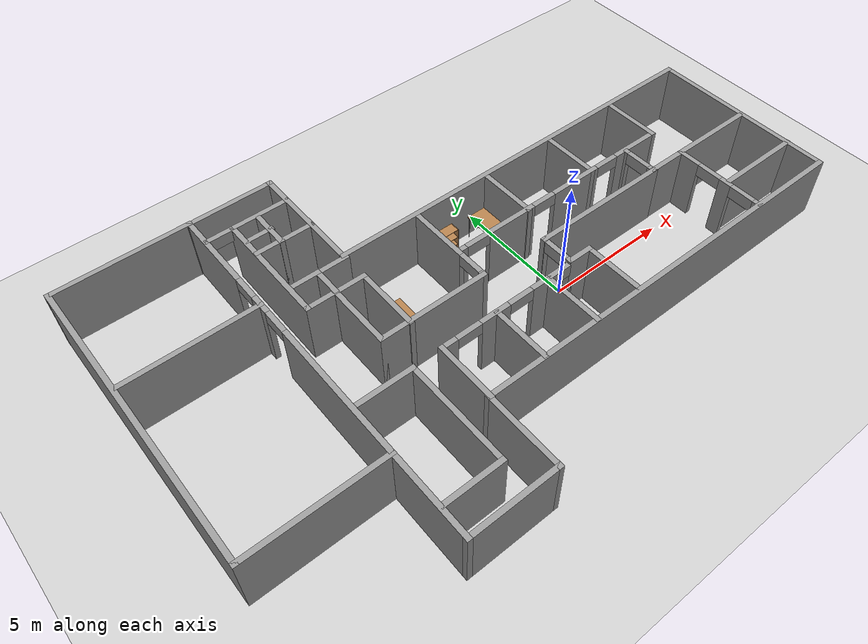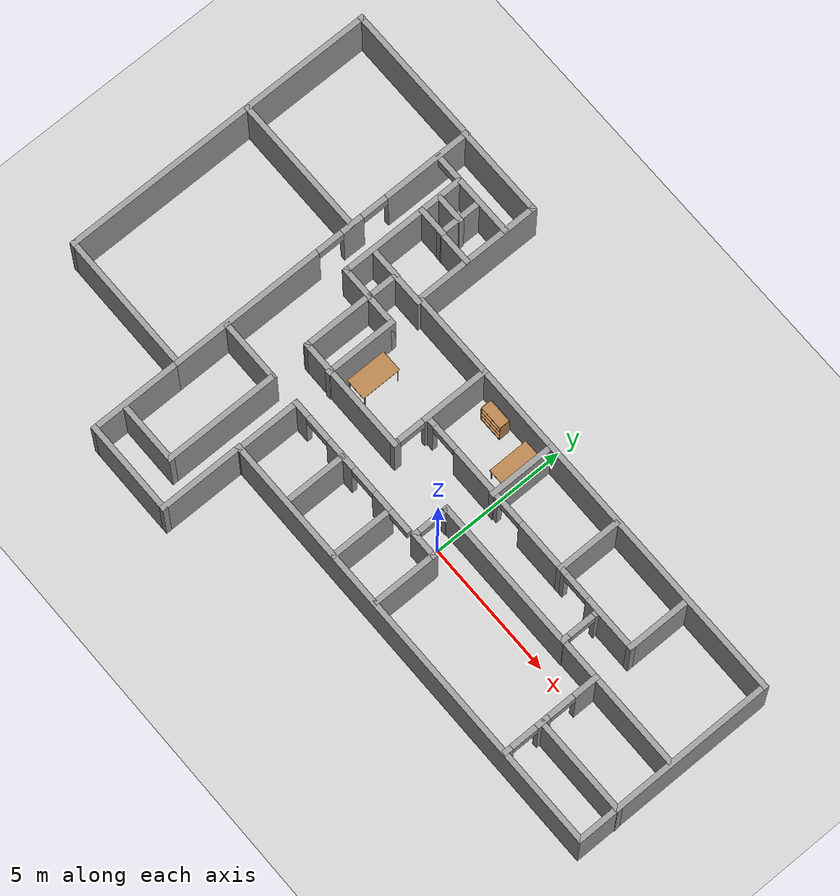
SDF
<sdf version="1.5">
 <world name="default">
  <model name="ground_plane">
   <static>1</static>
   <link name="link">
    <collision name="collision">
     <geometry><plane><normal>0 0 1</normal><size>100 100</size></plane></geometry>
     <surface><friction><ode><mu>100</mu><mu2>50</mu2></ode></friction></surface>
    </collision>
    <visual name="visual">
     <cast_shadows>0</cast_shadows>
     <geometry><plane><normal>0 0 1</normal><size>100 100</size></plane></geometry>
     <material>
      <script><uri>file://media/materials/scripts/gazebo.material</uri><name>Gazebo/Grey</name></script>
     </material>
    </visual>
   </link>
  </model>
  <model name="CP">
   <link name="Wall_101">
    <collision name="Wall_101_Collision">
     <geometry><box><size>1.30625 0.2 2.5</size></box></geometry>
     <pose>0 0 1.25 0 -0 0</pose>
    </collision>
    <visual name="Wall_101_Visual">
     <pose>0 0 1.25 0 -0 0</pose>
     <geometry><box><size>1.30625 0.2 2.5</size></box></geometry>
     <material>
      <script><uri>file://media/materials/scripts/gazebo.material</uri><name>Gazebo/Grey</name></script>
     </material>
    </visual>
    <pose>-6.6741 3.2611 0 0 -0 0</pose>
   </link>
   <link name="Wall_102">
    <collision name="Wall_102_Collision">
     <geometry><box><size>2.73431 0.2 2.5</size></box></geometry>
     <pose>0 0 1.25 0 -0 0</pose>
    </collision>
    <visual name="Wall_102_Visual">
     <pose>0 0 1.25 0 -0 0</pose>
     <geometry><box><size>2.73431 0.2 2.5</size></box></geometry>
     <material>
      <script><uri>file://media/materials/scripts/gazebo.material</uri><name>Gazebo/Grey</name></script>
     </material>
    </visual>
    <pose>-6.12098 1.99395 0 0 0 -1.5708</pose>
   </link>
   <link name="Wall_104">
    <collision name="Wall_104_Collision">
     <geometry><box><size>1.26602 0.2 2.5</size></box></geometry>
     <pose>0 0 1.25 0 -0 0</pose>
    </collision>
    <visual name="Wall_104_Visual">
     <pose>0 0 1.25 0 -0 0</pose>
     <geometry><box><size>1.26602 0.2 2.5</size></box></geometry>
     <material>
      <script><uri>file://media/materials/scripts/gazebo.material</uri><name>Gazebo/Grey</name></script>
     </material>
    </visual>
    <pose>-7.76023 4.36735 0 0 -0 0</pose>
   </link>
   <link name="Wall_105">
    <collision name="Wall_105_Collision">
     <geometry><box><size>1.24591 0.2 2.5</size></box></geometry>
     <pose>0 0 1.25 0 -0 0</pose>
    </collision>
    <visual name="Wall_105_Visual">
     <pose>0 0 1.25 0 -0 0</pose>
     <geometry><box><size>1.24591 0.2 2.5</size></box></geometry>
     <material>
      <script><uri>file://media/materials/scripts/gazebo.material</uri><name>Gazebo/Grey</name></script>
     </material>
    </visual>
    <pose>-7.22722 3.8444 0 0 0 -1.5708</pose>
   </link>
   <link name="Wall_107">
    <collision name="Wall_107_Collision">
     <geometry><box><size>1.70852 0.2 2.5</size></box></geometry>
     <pose>0 0 1.25 0 -0 0</pose>
    </collision>
    <visual name="Wall_107_Visual">
     <pose>0 0 1.25 0 -0 0</pose>
     <geometry><box><size>1.70852 0.2 2.5</size></box></geometry>
     <material>
      <script><uri>file://media/materials/scripts/gazebo.material</uri><name>Gazebo/Grey</name></script>
     </material>
    </visual>
    <pose>-7.38813 7.13297 0 0 0 -1.5708</pose>
   </link>
   <link name="Wall_108">
    <collision name="Wall_108_Collision">
     <geometry><box><size>1.42693 0.2 2.5</size></box></geometry>
     <pose>0 0 1.25 0 -0 0</pose>
    </collision>
    <visual name="Wall_108_Visual">
     <pose>0 0 1.25 0 -0 0</pose>
     <geometry><box><size>1.42693 0.2 2.5</size></box></geometry>
     <material>
      <script><uri>file://media/materials/scripts/gazebo.material</uri><name>Gazebo/Grey</name></script>
     </material>
    </visual>
    <pose>-6.77467 6.37871 0 0 -0 0</pose>
   </link>
   <link name="Wall_110">
    <collision name="Wall_110_Collision">
     <geometry><box><size>1.14534 0.2 2.5</size></box></geometry>
     <pose>0 0 1.25 0 -0 0</pose>
    </collision>
    <visual name="Wall_110_Visual">
     <pose>0 0 1.25 0 -0 0</pose>
     <geometry><box><size>1.14534 0.2 2.5</size></box></geometry>
     <material>
      <script><uri>file://media/materials/scripts/gazebo.material</uri><name>Gazebo/Grey</name></script>
     </material>
    </visual>
    <pose>-7.82057 7.10279 0 0 -0 0</pose>
   </link>
   <link name="Wall_112">
    <collision name="Wall_112_Collision">
     <geometry><box><size>1.16545 0.2 2.5</size></box></geometry>
     <pose>0 0 1.25 0 -0 0</pose>
    </collision>
    <visual name="Wall_112_Visual">
     <pose>0 0 1.25 0 -0 0</pose>
     <geometry><box><size>1.16545 0.2 2.5</size></box></geometry>
     <material>
      <script><uri>file://media/materials/scripts/gazebo.material</uri><name>Gazebo/Grey</name></script>
     </material>
    </visual>
    <pose>-7.85074 6.39882 0 0 -0 3.14159</pose>
   </link>
   <link name="Wall_114">
    <collision name="Wall_114_Collision">
     <geometry><box><size>1.30625 0.2 2.5</size></box></geometry>
     <pose>0 0 1.25 0 -0 0</pose>
    </collision>
    <visual name="Wall_114_Visual">
     <pose>0 0 1.25 0 -0 0</pose>
     <geometry><box><size>1.30625 0.2 2.5</size></box></geometry>
     <material>
      <script><uri>file://media/materials/scripts/gazebo.material</uri><name>Gazebo/Grey</name></script>
     </material>
    </visual>
    <pose>-6.65399 4.34724 0 0 -0 0</pose>
   </link>
   <link name="Wall_47">
    <collision name="Wall_47_Collision">
     <geometry><box><size>12.0469 0.2 2.5</size></box></geometry>
     <pose>0 0 1.25 0 -0 0</pose>
    </collision>
    <visual name="Wall_47_Visual">
     <pose>0 0 1.25 0 -0 0</pose>
     <geometry><box><size>12.0469 0.2 2.5</size></box></geometry>
     <material>
      <script><uri>file://media/materials/scripts/gazebo.material</uri><name>Gazebo/Grey</name></script>
     </material>
    </visual>
    <pose>-14.5888 3.21082 0 0 0 -1.5708</pose>
   </link>
   <link name="Wall_48">
    <collision name="Wall_48_Collision">
     <geometry><box><size>5.36919 0.2 2.5</size></box></geometry>
     <pose>0 0 1.25 0 -0 0</pose>
    </collision>
    <visual name="Wall_48_Visual">
     <pose>0 0 1.25 0 -0 0</pose>
     <geometry><box><size>5.36919 0.2 2.5</size></box></geometry>
     <material>
      <script><uri>file://media/materials/scripts/gazebo.material</uri><name>Gazebo/Grey</name></script>
     </material>
    </visual>
    <pose>-12.0042 -2.71263 0 0 -0 0</pose>
   </link>
   <link name="Wall_49">
    <pose>-9.4196 3.21082 0 0 -0 1.5708</pose>
    <visual name="Wall_49_Visual_0">
     <pose>-3.12596 0 1.25 0 -0 0</pose>
     <geometry><box><size>5.79498 0.2 2.5</size></box></geometry>
     <material>
      <script><uri>file://media/materials/scripts/gazebo.material</uri><name>Gazebo/Grey</name></script>
     </material>
    </visual>
    <collision name="Wall_49_Collision_0">
     <geometry><box><size>5.79498 0.2 2.5</size></box></geometry>
     <pose>-3.12596 0 1.25 0 -0 0</pose>
    </collision>
    <visual name="Wall_49_Visual_1">
     <pose>1.1867 0 1.25 0 -0 0</pose>
     <geometry><box><size>0.830335 0.2 2.5</size></box></geometry>
     <material>
      <script><uri>file://media/materials/scripts/gazebo.material</uri><name>Gazebo/Grey</name></script>
     </material>
    </visual>
    <collision name="Wall_49_Collision_1">
     <geometry><box><size>0.830335 0.2 2.5</size></box></geometry>
     <pose>1.1867 0 1.25 0 -0 0</pose>
    </collision>
    <visual name="Wall_49_Visual_2">
     <pose>4.31266 0 1.25 0 -0 0</pose>
     <geometry><box><size>3.42158 0.2 2.5</size></box></geometry>
     <material>
      <script><uri>file://media/materials/scripts/gazebo.material</uri><name>Gazebo/Grey</name></script>
     </material>
    </visual>
    <collision name="Wall_49_Collision_2">
     <geometry><box><size>3.42158 0.2 2.5</size></box></geometry>
     <pose>4.31266 0 1.25 0 -0 0</pose>
    </collision>
    <visual name="Wall_49_Visual_3">
     <pose>0.271533 0 2.25 0 -0 0</pose>
     <geometry><box><size>1 0.2 0.5</size></box></geometry>
     <material>
      <script><uri>file://media/materials/scripts/gazebo.material</uri><name>Gazebo/Grey</name></script>
     </material>
    </visual>
    <collision name="Wall_49_Collision_3">
     <geometry><box><size>1 0.2 0.5</size></box></geometry>
     <pose>0.271533 0 2.25 0 -0 0</pose>
    </collision>
    <visual name="Wall_49_Visual_4">
     <pose>2.10187 0 2.25 0 -0 0</pose>
     <geometry><box><size>1 0.2 0.5</size></box></geometry>
     <material>
      <script><uri>file://media/materials/scripts/gazebo.material</uri><name>Gazebo/Grey</name></script>
     </material>
    </visual>
    <collision name="Wall_49_Collision_4">
     <geometry><box><size>1 0.2 0.5</size></box></geometry>
     <pose>2.10187 0 2.25 0 -0 0</pose>
    </collision>
   </link>
   <link name="Wall_50">
    <collision name="Wall_50_Collision">
     <geometry><box><size>5.36919 0.2 2.5</size></box></geometry>
     <pose>0 0 1.25 0 -0 0</pose>
    </collision>
    <visual name="Wall_50_Visual">
     <pose>0 0 1.25 0 -0 0</pose>
     <geometry><box><size>5.36919 0.2 2.5</size></box></geometry>
     <material>
      <script><uri>file://media/materials/scripts/gazebo.material</uri><name>Gazebo/Grey</name></script>
     </material>
    </visual>
    <pose>-12.0042 9.13426 0 0 -0 3.14159</pose>
   </link>
   <link name="Wall_52">
    <collision name="Wall_52_Collision">
     <geometry><box><size>5.32896 0.2 2.5</size></box></geometry>
     <pose>0 0 1.25 0 -0 0</pose>
    </collision>
    <visual name="Wall_52_Visual">
     <pose>0 0 1.25 0 -0 0</pose>
     <geometry><box><size>5.32896 0.2 2.5</size></box></geometry>
     <material>
      <script><uri>file://media/materials/scripts/gazebo.material</uri><name>Gazebo/Grey</name></script>
     </material>
    </visual>
    <pose>-11.9841 4.38746 0 0 -0 0</pose>
   </link>
   <link name="Wall_54">
    <collision name="Wall_54_Collision">
     <geometry><box><size>3.49863 0.2 2.5</size></box></geometry>
     <pose>0 0 1.25 0 -0 0</pose>
    </collision>
    <visual name="Wall_54_Visual">
     <pose>0 0 1.25 0 -0 0</pose>
     <geometry><box><size>3.49863 0.2 2.5</size></box></geometry>
     <material>
      <script><uri>file://media/materials/scripts/gazebo.material</uri><name>Gazebo/Grey</name></script>
     </material>
    </visual>
    <pose>-7.7904 9.11415 0 0 -0 0</pose>
   </link>
   <link name="Wall_55">
    <collision name="Wall_55_Collision">
     <geometry><box><size>4.86635 0.2 2.5</size></box></geometry>
     <pose>0 0 1.25 0 -0 0</pose>
    </collision>
    <visual name="Wall_55_Visual">
     <pose>0 0 1.25 0 -0 0</pose>
     <geometry><box><size>4.86635 0.2 2.5</size></box></geometry>
     <material>
      <script><uri>file://media/materials/scripts/gazebo.material</uri><name>Gazebo/Grey</name></script>
     </material>
    </visual>
    <pose>-6.14109 6.78098 0 0 0 -1.5708</pose>
   </link>
   <link name="Wall_56">
    <collision name="Wall_56_Collision">
     <geometry><box><size>16.6127 0.2 2.5</size></box></geometry>
     <pose>0 0 1.25 0 -0 0</pose>
    </collision>
    <visual name="Wall_56_Visual">
     <pose>0 0 1.25 0 -0 0</pose>
     <geometry><box><size>16.6127 0.2 2.5</size></box></geometry>
     <material>
      <script><uri>file://media/materials/scripts/gazebo.material</uri><name>Gazebo/Grey</name></script>
     </material>
    </visual>
    <pose>2.06525 4.4478 0 0 -0 0</pose>
   </link>
   <link name="Wall_57">
    <collision name="Wall_57_Collision">
     <geometry><box><size>7.66214 0.2 2.5</size></box></geometry>
     <pose>0 0 1.25 0 -0 0</pose>
    </collision>
    <visual name="Wall_57_Visual">
     <pose>0 0 1.25 0 -0 0</pose>
     <geometry><box><size>7.66214 0.2 2.5</size></box></geometry>
     <material>
      <script><uri>file://media/materials/scripts/gazebo.material</uri><name>Gazebo/Grey</name></script>
     </material>
    </visual>
    <pose>10.2716 0.716735 0 0 0 -1.5708</pose>
   </link>
   <link name="Wall_58">
    <collision name="Wall_58_Collision">
     <geometry><box><size>16.5121 0.2 2.5</size></box></geometry>
     <pose>0 0 1.25 0 -0 0</pose>
    </collision>
    <visual name="Wall_58_Visual">
     <pose>0 0 1.25 0 -0 0</pose>
     <geometry><box><size>16.5121 0.2 2.5</size></box></geometry>
     <material>
      <script><uri>file://media/materials/scripts/gazebo.material</uri><name>Gazebo/Grey</name></script>
     </material>
    </visual>
    <pose>2.11553 -3.01433 0 0 -0 3.14159</pose>
   </link>
   <link name="Wall_59">
    <collision name="Wall_59_Collision">
     <geometry><box><size>3.23715 0.2 2.5</size></box></geometry>
     <pose>0 0 1.25 0 -0 0</pose>
    </collision>
    <visual name="Wall_59_Visual">
     <pose>0 0 1.25 0 -0 0</pose>
     <geometry><box><size>3.23715 0.2 2.5</size></box></geometry>
     <material>
      <script><uri>file://media/materials/scripts/gazebo.material</uri><name>Gazebo/Grey</name></script>
     </material>
    </visual>
    <pose>-6.04052 -4.53291 0 0 0 -1.5708</pose>
   </link>
   <link name="Wall_60">
    <collision name="Wall_60_Collision">
     <geometry><box><size>3.57908 0.2 2.5</size></box></geometry>
     <pose>0 0 1.25 0 -0 0</pose>
    </collision>
    <visual name="Wall_60_Visual">
     <pose>0 0 1.25 0 -0 0</pose>
     <geometry><box><size>3.57908 0.2 2.5</size></box></geometry>
     <material>
      <script><uri>file://media/materials/scripts/gazebo.material</uri><name>Gazebo/Grey</name></script>
     </material>
    </visual>
    <pose>-7.73006 -6.05148 0 0 -0 3.14159</pose>
   </link>
   <link name="Wall_61">
    <collision name="Wall_61_Collision">
     <geometry><box><size>3.35783 0.2 2.5</size></box></geometry>
     <pose>0 0 1.25 0 -0 0</pose>
    </collision>
    <visual name="Wall_61_Visual">
     <pose>0 0 1.25 0 -0 0</pose>
     <geometry><box><size>3.35783 0.2 2.5</size></box></geometry>
     <material>
      <script><uri>file://media/materials/scripts/gazebo.material</uri><name>Gazebo/Grey</name></script>
     </material>
    </visual>
    <pose>-9.4196 -4.47257 0 0 -0 1.5708</pose>
   </link>
   <link name="Wall_63">
    <pose>-7.77029 7.96768 0 0 -0 0</pose>
    <visual name="Wall_63_Visual_0">
     <pose>-1.63755 0 1.25 0 -0 0</pose>
     <geometry><box><size>0.102839 0.2 2.5</size></box></geometry>
     <material>
      <script><uri>file://media/materials/scripts/gazebo.material</uri><name>Gazebo/Grey</name></script>
     </material>
    </visual>
    <collision name="Wall_63_Collision_0">
     <geometry><box><size>0.102839 0.2 2.5</size></box></geometry>
     <pose>-1.63755 0 1.25 0 -0 0</pose>
    </collision>
    <visual name="Wall_63_Visual_1">
     <pose>0.55142 0 1.25 0 -0 0</pose>
     <geometry><box><size>2.2751 0.2 2.5</size></box></geometry>
     <material>
      <script><uri>file://media/materials/scripts/gazebo.material</uri><name>Gazebo/Grey</name></script>
     </material>
    </visual>
    <collision name="Wall_63_Collision_1">
     <geometry><box><size>2.2751 0.2 2.5</size></box></geometry>
     <pose>0.55142 0 1.25 0 -0 0</pose>
    </collision>
    <visual name="Wall_63_Visual_2">
     <pose>-1.08613 0 2.25 0 -0 0</pose>
     <geometry><box><size>1 0.2 0.5</size></box></geometry>
     <material>
      <script><uri>file://media/materials/scripts/gazebo.material</uri><name>Gazebo/Grey</name></script>
     </material>
    </visual>
    <collision name="Wall_63_Collision_2">
     <geometry><box><size>1 0.2 0.5</size></box></geometry>
     <pose>-1.08613 0 2.25 0 -0 0</pose>
    </collision>
   </link>
   <link name="Wall_65">
    <collision name="Wall_65_Collision">
     <geometry><box><size>4.82612 0.2 2.5</size></box></geometry>
     <pose>0 0 1.25 0 -0 0</pose>
    </collision>
    <visual name="Wall_65_Visual">
     <pose>0 0 1.25 0 -0 0</pose>
     <geometry><box><size>4.82612 0.2 2.5</size></box></geometry>
     <material>
      <script><uri>file://media/materials/scripts/gazebo.material</uri><name>Gazebo/Grey</name></script>
     </material>
    </visual>
    <pose>-8.35358 5.59428 0 0 0 -1.5708</pose>
   </link>
   <link name="Wall_66">
    <collision name="Wall_66_Collision">
     <geometry><box><size>1.30625 0.2 2.5</size></box></geometry>
     <pose>0 0 1.25 0 -0 0</pose>
    </collision>
    <visual name="Wall_66_Visual">
     <pose>0 0 1.25 0 -0 0</pose>
     <geometry><box><size>1.30625 0.2 2.5</size></box></geometry>
     <material>
      <script><uri>file://media/materials/scripts/gazebo.material</uri><name>Gazebo/Grey</name></script>
     </material>
    </visual>
    <pose>-7.80046 3.28121 0 0 -0 0</pose>
   </link>
   <link name="Wall_67">
    <collision name="Wall_67_Collision">
     <geometry><box><size>2.7142 0.2 2.5</size></box></geometry>
     <pose>0 0 1.25 0 -0 0</pose>
    </collision>
    <visual name="Wall_67_Visual">
     <pose>0 0 1.25 0 -0 0</pose>
     <geometry><box><size>2.7142 0.2 2.5</size></box></geometry>
     <material>
      <script><uri>file://media/materials/scripts/gazebo.material</uri><name>Gazebo/Grey</name></script>
     </material>
    </visual>
    <pose>-7.24734 2.02412 0 0 0 -1.5708</pose>
   </link>
   <link name="Wall_68">
    <collision name="Wall_68_Collision">
     <geometry><box><size>4.44396 0.2 2.5</size></box></geometry>
     <pose>0 0 1.25 0 -0 0</pose>
    </collision>
    <visual name="Wall_68_Visual">
     <pose>0 0 1.25 0 -0 0</pose>
     <geometry><box><size>4.44396 0.2 2.5</size></box></geometry>
     <material>
      <script><uri>file://media/materials/scripts/gazebo.material</uri><name>Gazebo/Grey</name></script>
     </material>
    </visual>
    <pose>-5.12535 0.767019 0 0 -0 0</pose>
   </link>
   <link name="Wall_69">
    <pose>-3.00337 2.60741 0 0 -0 1.5708</pose>
    <visual name="Wall_69_Visual_0">
     <pose>-1.80852 0 1.25 0 -0 0</pose>
     <geometry><box><size>0.263748 0.2 2.5</size></box></geometry>
     <material>
      <script><uri>file://media/materials/scripts/gazebo.material</uri><name>Gazebo/Grey</name></script>
     </material>
    </visual>
    <collision name="Wall_69_Collision_0">
     <geometry><box><size>0.263748 0.2 2.5</size></box></geometry>
     <pose>-1.80852 0 1.25 0 -0 0</pose>
    </collision>
    <visual name="Wall_69_Visual_1">
     <pose>0.631874 0 1.25 0 -0 0</pose>
     <geometry><box><size>2.61704 0.2 2.5</size></box></geometry>
     <material>
      <script><uri>file://media/materials/scripts/gazebo.material</uri><name>Gazebo/Grey</name></script>
     </material>
    </visual>
    <collision name="Wall_69_Collision_1">
     <geometry><box><size>2.61704 0.2 2.5</size></box></geometry>
     <pose>0.631874 0 1.25 0 -0 0</pose>
    </collision>
    <visual name="Wall_69_Visual_2">
     <pose>-1.17664 0 2.25 0 -0 0</pose>
     <geometry><box><size>1 0.2 0.5</size></box></geometry>
     <material>
      <script><uri>file://media/materials/scripts/gazebo.material</uri><name>Gazebo/Grey</name></script>
     </material>
    </visual>
    <collision name="Wall_69_Collision_2">
     <geometry><box><size>1 0.2 0.5</size></box></geometry>
     <pose>-1.17664 0 2.25 0 -0 0</pose>
    </collision>
   </link>
   <link name="Wall_71">
    <pose>1.87417 2.11463 0 0 -0 0</pose>
    <visual name="Wall_71_Visual_0">
     <pose>-4.71493 0 1.25 0 -0 0</pose>
     <geometry><box><size>0.404543 0.2 2.5</size></box></geometry>
     <material>
      <script><uri>file://media/materials/scripts/gazebo.material</uri><name>Gazebo/Grey</name></script>
     </material>
    </visual>
    <collision name="Wall_71_Collision_0">
     <geometry><box><size>0.404543 0.2 2.5</size></box></geometry>
     <pose>-4.71493 0 1.25 0 -0 0</pose>
    </collision>
    <visual name="Wall_71_Visual_1">
     <pose>-2.45386 0 1.25 0 -0 0</pose>
     <geometry><box><size>2.1176 0.2 2.5</size></box></geometry>
     <material>
      <script><uri>file://media/materials/scripts/gazebo.material</uri><name>Gazebo/Grey</name></script>
     </material>
    </visual>
    <collision name="Wall_71_Collision_1">
     <geometry><box><size>2.1176 0.2 2.5</size></box></geometry>
     <pose>-2.45386 0 1.25 0 -0 0</pose>
    </collision>
    <visual name="Wall_71_Visual_2">
     <pose>0.693918 0 1.25 0 -0 0</pose>
     <geometry><box><size>2.17794 0.2 2.5</size></box></geometry>
     <material>
      <script><uri>file://media/materials/scripts/gazebo.material</uri><name>Gazebo/Grey</name></script>
     </material>
    </visual>
    <collision name="Wall_71_Collision_2">
     <geometry><box><size>2.17794 0.2 2.5</size></box></geometry>
     <pose>0.693918 0 1.25 0 -0 0</pose>
    </collision>
    <visual name="Wall_71_Visual_3">
     <pose>3.85005 0 1.25 0 -0 0</pose>
     <geometry><box><size>2.13431 0.2 2.5</size></box></geometry>
     <material>
      <script><uri>file://media/materials/scripts/gazebo.material</uri><name>Gazebo/Grey</name></script>
     </material>
    </visual>
    <collision name="Wall_71_Collision_3">
     <geometry><box><size>2.13431 0.2 2.5</size></box></geometry>
     <pose>3.85005 0 1.25 0 -0 0</pose>
    </collision>
    <visual name="Wall_71_Visual_4">
     <pose>-4.01266 0 2.25 0 -0 0</pose>
     <geometry><box><size>1 0.2 0.5</size></box></geometry>
     <material>
      <script><uri>file://media/materials/scripts/gazebo.material</uri><name>Gazebo/Grey</name></script>
     </material>
    </visual>
    <collision name="Wall_71_Collision_4">
     <geometry><box><size>1 0.2 0.5</size></box></geometry>
     <pose>-4.01266 0 2.25 0 -0 0</pose>
    </collision>
    <visual name="Wall_71_Visual_5">
     <pose>-0.895054 0 2.25 0 -0 0</pose>
     <geometry><box><size>1 0.2 0.5</size></box></geometry>
     <material>
      <script><uri>file://media/materials/scripts/gazebo.material</uri><name>Gazebo/Grey</name></script>
     </material>
    </visual>
    <collision name="Wall_71_Collision_5">
     <geometry><box><size>1 0.2 0.5</size></box></geometry>
     <pose>-0.895054 0 2.25 0 -0 0</pose>
    </collision>
    <visual name="Wall_71_Visual_6">
     <pose>2.28289 0 2.25 0 -0 0</pose>
     <geometry><box><size>1 0.2 0.5</size></box></geometry>
     <material>
      <script><uri>file://media/materials/scripts/gazebo.material</uri><name>Gazebo/Grey</name></script>
     </material>
    </visual>
    <collision name="Wall_71_Collision_6">
     <geometry><box><size>1 0.2 0.5</size></box></geometry>
     <pose>2.28289 0 2.25 0 -0 0</pose>
    </collision>
   </link>
   <link name="Wall_72">
    <collision name="Wall_72_Collision">
     <geometry><box><size>2.37227 0.2 2.5</size></box></geometry>
     <pose>0 0 1.25 0 -0 0</pose>
    </collision>
    <visual name="Wall_72_Visual">
     <pose>0 0 1.25 0 -0 0</pose>
     <geometry><box><size>2.37227 0.2 2.5</size></box></geometry>
     <material>
      <script><uri>file://media/materials/scripts/gazebo.material</uri><name>Gazebo/Grey</name></script>
     </material>
    </visual>
    <pose>6.69137 3.20076 0 0 -0 1.5708</pose>
   </link>
   <link name="Wall_74">
    <collision name="Wall_74_Collision">
     <geometry><box><size>2.45272 0.2 2.5</size></box></geometry>
     <pose>0 0 1.25 0 -0 0</pose>
    </collision>
    <visual name="Wall_74_Visual">
     <pose>0 0 1.25 0 -0 0</pose>
     <geometry><box><size>2.45272 0.2 2.5</size></box></geometry>
     <material>
      <script><uri>file://media/materials/scripts/gazebo.material</uri><name>Gazebo/Grey</name></script>
     </material>
    </visual>
    <pose>0.214799 3.20076 0 0 -0 1.5708</pose>
   </link>
   <link name="Wall_76">
    <collision name="Wall_76_Collision">
     <geometry><box><size>2.43261 0.2 2.5</size></box></geometry>
     <pose>0 0 1.25 0 -0 0</pose>
    </collision>
    <visual name="Wall_76_Visual">
     <pose>0 0 1.25 0 -0 0</pose>
     <geometry><box><size>2.43261 0.2 2.5</size></box></geometry>
     <material>
      <script><uri>file://media/materials/scripts/gazebo.material</uri><name>Gazebo/Grey</name></script>
     </material>
    </visual>
    <pose>3.39274 3.23093 0 0 -0 1.5708</pose>
   </link>
   <link name="Wall_78">
    <pose>5.18285 1.34026 0 0 0 -1.5708</pose>
    <visual name="Wall_78_Visual_0">
     <pose>-0.662044 0 1.25 0 -0 0</pose>
     <geometry><box><size>0.223521 0.2 2.5</size></box></geometry>
     <material>
      <script><uri>file://media/materials/scripts/gazebo.material</uri><name>Gazebo/Grey</name></script>
     </material>
    </visual>
    <collision name="Wall_78_Collision_0">
     <geometry><box><size>0.223521 0.2 2.5</size></box></geometry>
     <pose>-0.662044 0 1.25 0 -0 0</pose>
    </collision>
    <visual name="Wall_78_Visual_1">
     <pose>0.61176 0 1.25 0 -0 0</pose>
     <geometry><box><size>0.324089 0.2 2.5</size></box></geometry>
     <material>
      <script><uri>file://media/materials/scripts/gazebo.material</uri><name>Gazebo/Grey</name></script>
     </material>
    </visual>
    <collision name="Wall_78_Collision_1">
     <geometry><box><size>0.324089 0.2 2.5</size></box></geometry>
     <pose>0.61176 0 1.25 0 -0 0</pose>
    </collision>
    <visual name="Wall_78_Visual_2">
     <pose>-0.050284 0 2.25 0 -0 0</pose>
     <geometry><box><size>1 0.2 0.5</size></box></geometry>
     <material>
      <script><uri>file://media/materials/scripts/gazebo.material</uri><name>Gazebo/Grey</name></script>
     </material>
    </visual>
    <collision name="Wall_78_Collision_2">
     <geometry><box><size>1 0.2 0.5</size></box></geometry>
     <pose>-0.050284 0 2.25 0 -0 0</pose>
    </collision>
   </link>
   <link name="Wall_79">
    <collision name="Wall_79_Collision">
     <geometry><box><size>5.18817 0.2 2.5</size></box></geometry>
     <pose>0 0 1.25 0 -0 0</pose>
    </collision>
    <visual name="Wall_79_Visual">
     <pose>0 0 1.25 0 -0 0</pose>
     <geometry><box><size>5.18817 0.2 2.5</size></box></geometry>
     <material>
      <script><uri>file://media/materials/scripts/gazebo.material</uri><name>Gazebo/Grey</name></script>
     </material>
    </visual>
    <pose>7.67693 0.666451 0 0 -0 0</pose>
   </link>
   <link name="Wall_81">
    <collision name="Wall_81_Collision">
     <geometry><box><size>5.75135 0.2 2.5</size></box></geometry>
     <pose>0 0 1.25 0 -0 0</pose>
    </collision>
    <visual name="Wall_81_Visual">
     <pose>0 0 1.25 0 -0 0</pose>
     <geometry><box><size>5.75135 0.2 2.5</size></box></geometry>
     <material>
      <script><uri>file://media/materials/scripts/gazebo.material</uri><name>Gazebo/Grey</name></script>
     </material>
    </visual>
    <pose>2.42729 0.646338 0 0 -0 3.14159</pose>
   </link>
   <link name="Wall_82">
    <pose>-0.348381 0.002703 0 0 0 -1.5708</pose>
    <visual name="Wall_82_Visual_0">
     <pose>-0.631874 0 1.25 0 -0 0</pose>
     <geometry><box><size>0.223521 0.2 2.5</size></box></geometry>
     <material>
      <script><uri>file://media/materials/scripts/gazebo.material</uri><name>Gazebo/Grey</name></script>
     </material>
    </visual>
    <collision name="Wall_82_Collision_0">
     <geometry><box><size>0.223521 0.2 2.5</size></box></geometry>
     <pose>-0.631874 0 1.25 0 -0 0</pose>
    </collision>
    <visual name="Wall_82_Visual_1">
     <pose>0.61176 0 1.25 0 -0 0</pose>
     <geometry><box><size>0.263748 0.2 2.5</size></box></geometry>
     <material>
      <script><uri>file://media/materials/scripts/gazebo.material</uri><name>Gazebo/Grey</name></script>
     </material>
    </visual>
    <collision name="Wall_82_Collision_1">
     <geometry><box><size>0.263748 0.2 2.5</size></box></geometry>
     <pose>0.61176 0 1.25 0 -0 0</pose>
    </collision>
    <visual name="Wall_82_Visual_2">
     <pose>-0.020114 0 2.25 0 -0 0</pose>
     <geometry><box><size>1 0.2 0.5</size></box></geometry>
     <material>
      <script><uri>file://media/materials/scripts/gazebo.material</uri><name>Gazebo/Grey</name></script>
     </material>
    </visual>
    <collision name="Wall_82_Collision_2">
     <geometry><box><size>1 0.2 0.5</size></box></geometry>
     <pose>-0.020114 0 2.25 0 -0 0</pose>
    </collision>
   </link>
   <link name="Wall_83">
    <collision name="Wall_83_Collision">
     <geometry><box><size>1.085 0.2 2.5</size></box></geometry>
     <pose>0 0 1.25 0 -0 0</pose>
    </collision>
    <visual name="Wall_83_Visual">
     <pose>0 0 1.25 0 -0 0</pose>
     <geometry><box><size>1.085 0.2 2.5</size></box></geometry>
     <material>
      <script><uri>file://media/materials/scripts/gazebo.material</uri><name>Gazebo/Grey</name></script>
     </material>
    </visual>
    <pose>0.094117 -0.640931 0 0 -0 0</pose>
   </link>
   <link name="Wall_84">
    <collision name="Wall_84_Collision">
     <geometry><box><size>2.47283 0.2 2.5</size></box></geometry>
     <pose>0 0 1.25 0 -0 0</pose>
    </collision>
    <visual name="Wall_84_Visual">
     <pose>0 0 1.25 0 -0 0</pose>
     <geometry><box><size>2.47283 0.2 2.5</size></box></geometry>
     <material>
      <script><uri>file://media/materials/scripts/gazebo.material</uri><name>Gazebo/Grey</name></script>
     </material>
    </visual>
    <pose>0.536616 -1.77735 0 0 0 -1.5708</pose>
   </link>
   <link name="Wall_86">
    <collision name="Wall_86_Collision">
     <geometry><box><size>2.51306 0.2 2.5</size></box></geometry>
     <pose>0 0 1.25 0 -0 0</pose>
    </collision>
    <visual name="Wall_86_Visual">
     <pose>0 0 1.25 0 -0 0</pose>
     <geometry><box><size>2.51306 0.2 2.5</size></box></geometry>
     <material>
      <script><uri>file://media/materials/scripts/gazebo.material</uri><name>Gazebo/Grey</name></script>
     </material>
    </visual>
    <pose>-6.0003 -1.87792 0 0 -0 1.5708</pose>
   </link>
   <link name="Wall_87">
    <pose>-3.30508 -0.721385 0 0 -0 0</pose>
    <visual name="Wall_87_Visual_0">
     <pose>-2.45215 0 1.25 0 -0 0</pose>
     <geometry><box><size>0.686133 0.2 2.5</size></box></geometry>
     <material>
      <script><uri>file://media/materials/scripts/gazebo.material</uri><name>Gazebo/Grey</name></script>
     </material>
    </visual>
    <collision name="Wall_87_Collision_0">
     <geometry><box><size>0.686133 0.2 2.5</size></box></geometry>
     <pose>-2.45215 0 1.25 0 -0 0</pose>
    </collision>
    <visual name="Wall_87_Visual_1">
     <pose>-0.502839 0 1.25 0 -0 0</pose>
     <geometry><box><size>1.21249 0.2 2.5</size></box></geometry>
     <material>
      <script><uri>file://media/materials/scripts/gazebo.material</uri><name>Gazebo/Grey</name></script>
     </material>
    </visual>
    <collision name="Wall_87_Collision_1">
     <geometry><box><size>1.21249 0.2 2.5</size></box></geometry>
     <pose>-0.502839 0 1.25 0 -0 0</pose>
    </collision>
    <visual name="Wall_87_Visual_2">
     <pose>1.4884 0 1.25 0 -0 0</pose>
     <geometry><box><size>0.769994 0.2 2.5</size></box></geometry>
     <material>
      <script><uri>file://media/materials/scripts/gazebo.material</uri><name>Gazebo/Grey</name></script>
     </material>
    </visual>
    <collision name="Wall_87_Collision_2">
     <geometry><box><size>0.769994 0.2 2.5</size></box></geometry>
     <pose>1.4884 0 1.25 0 -0 0</pose>
    </collision>
    <visual name="Wall_87_Visual_3">
     <pose>-1.60909 0 2.25 0 -0 0</pose>
     <geometry><box><size>1 0.2 0.5</size></box></geometry>
     <material>
      <script><uri>file://media/materials/scripts/gazebo.material</uri><name>Gazebo/Grey</name></script>
     </material>
    </visual>
    <collision name="Wall_87_Collision_3">
     <geometry><box><size>1 0.2 0.5</size></box></geometry>
     <pose>-1.60909 0 2.25 0 -0 0</pose>
    </collision>
    <visual name="Wall_87_Visual_4">
     <pose>0.603407 0 2.25 0 -0 0</pose>
     <geometry><box><size>1 0.2 0.5</size></box></geometry>
     <material>
      <script><uri>file://media/materials/scripts/gazebo.material</uri><name>Gazebo/Grey</name></script>
     </material>
    </visual>
    <collision name="Wall_87_Collision_4">
     <geometry><box><size>1 0.2 0.5</size></box></geometry>
     <pose>0.603407 0 2.25 0 -0 0</pose>
    </collision>
    <visual name="Wall_87_Visual_5">
     <pose>2.33431 0 2.25 0 -0 0</pose>
     <geometry><box><size>0.921817 0.2 0.5</size></box></geometry>
     <material>
      <script><uri>file://media/materials/scripts/gazebo.material</uri><name>Gazebo/Grey</name></script>
     </material>
    </visual>
    <collision name="Wall_87_Collision_5">
     <geometry><box><size>0.921817 0.2 0.5</size></box></geometry>
     <pose>2.33431 0 2.25 0 -0 0</pose>
    </collision>
   </link>
   <link name="Wall_89">
    <collision name="Wall_89_Collision">
     <geometry><box><size>2.39238 0.2 2.5</size></box></geometry>
     <pose>0 0 1.25 0 -0 0</pose>
    </collision>
    <visual name="Wall_89_Visual">
     <pose>0 0 1.25 0 -0 0</pose>
     <geometry><box><size>2.39238 0.2 2.5</size></box></geometry>
     <material>
      <script><uri>file://media/materials/scripts/gazebo.material</uri><name>Gazebo/Grey</name></script>
     </material>
    </visual>
    <pose>-1.45463 -1.89803 0 0 0 -1.5708</pose>
   </link>
   <link name="Wall_91">
    <collision name="Wall_91_Collision">
     <geometry><box><size>2.39238 0.2 2.5</size></box></geometry>
     <pose>0 0 1.25 0 -0 0</pose>
    </collision>
    <visual name="Wall_91_Visual">
     <pose>0 0 1.25 0 -0 0</pose>
     <geometry><box><size>2.39238 0.2 2.5</size></box></geometry>
     <material>
      <script><uri>file://media/materials/scripts/gazebo.material</uri><name>Gazebo/Grey</name></script>
     </material>
    </visual>
    <pose>-3.72746 -1.87792 0 0 0 -1.5708</pose>
   </link>
   <link name="Wall_93">
    <collision name="Wall_93_Collision">
     <geometry><box><size>2.39238 0.2 2.5</size></box></geometry>
     <pose>0 0 1.25 0 -0 0</pose>
    </collision>
    <visual name="Wall_93_Visual">
     <pose>0 0 1.25 0 -0 0</pose>
     <geometry><box><size>2.39238 0.2 2.5</size></box></geometry>
     <material>
      <script><uri>file://media/materials/scripts/gazebo.material</uri><name>Gazebo/Grey</name></script>
     </material>
    </visual>
    <pose>-8.24296 -0.741499 0 0 -0 0</pose>
   </link>
   <link name="Wall_94">
    <collision name="Wall_94_Collision">
     <geometry><box><size>4.3434 0.2 2.5</size></box></geometry>
     <pose>0 0 1.25 0 -0 0</pose>
    </collision>
    <visual name="Wall_94_Visual">
     <pose>0 0 1.25 0 -0 0</pose>
     <geometry><box><size>4.3434 0.2 2.5</size></box></geometry>
     <material>
      <script><uri>file://media/materials/scripts/gazebo.material</uri><name>Gazebo/Grey</name></script>
     </material>
    </visual>
    <pose>-7.14677 -2.8132 0 0 0 -1.5708</pose>
   </link>
   <link name="Wall_95">
    <collision name="Wall_95_Collision">
     <geometry><box><size>2.39238 0.2 2.5</size></box></geometry>
     <pose>0 0 1.25 0 -0 0</pose>
    </collision>
    <visual name="Wall_95_Visual">
     <pose>0 0 1.25 0 -0 0</pose>
     <geometry><box><size>2.39238 0.2 2.5</size></box></geometry>
     <material>
      <script><uri>file://media/materials/scripts/gazebo.material</uri><name>Gazebo/Grey</name></script>
     </material>
    </visual>
    <pose>-8.24296 -4.8849 0 0 -0 3.14159</pose>
   </link>
   <link name="Wall_97">
    <pose>6.7316 -1.15383 0 0 0 -1.5708</pose>
    <visual name="Wall_97_Visual_0">
     <pose>-1.4163 0 1.25 0 -0 0</pose>
     <geometry><box><size>1.00795 0.2 2.5</size></box></geometry>
     <material>
      <script><uri>file://media/materials/scripts/gazebo.material</uri><name>Gazebo/Grey</name></script>
     </material>
    </visual>
    <collision name="Wall_97_Collision_0">
     <geometry><box><size>1.00795 0.2 2.5</size></box></geometry>
     <pose>-1.4163 0 1.25 0 -0 0</pose>
    </collision>
    <visual name="Wall_97_Visual_1">
     <pose>0.341931 0 1.25 0 -0 0</pose>
     <geometry><box><size>0.508518 0.2 2.5</size></box></geometry>
     <material>
      <script><uri>file://media/materials/scripts/gazebo.material</uri><name>Gazebo/Grey</name></script>
     </material>
    </visual>
    <collision name="Wall_97_Collision_1">
     <geometry><box><size>0.508518 0.2 2.5</size></box></geometry>
     <pose>0.341931 0 1.25 0 -0 0</pose>
    </collision>
    <visual name="Wall_97_Visual_2">
     <pose>1.75823 0 1.25 0 -0 0</pose>
     <geometry><box><size>0.324089 0.2 2.5</size></box></geometry>
     <material>
      <script><uri>file://media/materials/scripts/gazebo.material</uri><name>Gazebo/Grey</name></script>
     </material>
    </visual>
    <collision name="Wall_97_Collision_2">
     <geometry><box><size>0.324089 0.2 2.5</size></box></geometry>
     <pose>1.75823 0 1.25 0 -0 0</pose>
    </collision>
    <visual name="Wall_97_Visual_3">
     <pose>-0.412328 0 2.25 0 -0 0</pose>
     <geometry><box><size>1 0.2 0.5</size></box></geometry>
     <material>
      <script><uri>file://media/materials/scripts/gazebo.material</uri><name>Gazebo/Grey</name></script>
     </material>
    </visual>
    <collision name="Wall_97_Collision_3">
     <geometry><box><size>1 0.2 0.5</size></box></geometry>
     <pose>-0.412328 0 2.25 0 -0 0</pose>
    </collision>
    <visual name="Wall_97_Visual_4">
     <pose>1.09619 0 2.25 0 -0 0</pose>
     <geometry><box><size>1 0.2 0.5</size></box></geometry>
     <material>
      <script><uri>file://media/materials/scripts/gazebo.material</uri><name>Gazebo/Grey</name></script>
     </material>
    </visual>
    <collision name="Wall_97_Collision_4">
     <geometry><box><size>1 0.2 0.5</size></box></geometry>
     <pose>1.09619 0 2.25 0 -0 0</pose>
    </collision>
   </link>
   <link name="Wall_99">
    <collision name="Wall_99_Collision">
     <geometry><box><size>3.71988 0.2 2.5</size></box></geometry>
     <pose>0 0 1.25 0 -0 0</pose>
    </collision>
    <visual name="Wall_99_Visual">
     <pose>0 0 1.25 0 -0 0</pose>
     <geometry><box><size>3.71988 0.2 2.5</size></box></geometry>
     <material>
      <script><uri>file://media/materials/scripts/gazebo.material</uri><name>Gazebo/Grey</name></script>
     </material>
    </visual>
    <pose>8.53176 -1.52593 0 0 -0 0</pose>
   </link>
   <static>1</static>
  </model>
  <model name="table_3_clone_clone_clone_0">
   <static>1</static>
   <link name="link">
    <collision name="surface">
     <pose>0 0 1 0 -0 0</pose>
     <geometry><box><size>1.5 0.8 0.03</size></box></geometry>
     <surface><friction><ode><mu>0.6</mu><mu2>0.6</mu2></ode></friction></surface>
    </collision>
    <visual name="visual1">
     <pose>0 0 1 0 -0 0</pose>
     <geometry><box><size>1.5 0.8 0.03</size></box></geometry>
     <material>
      <script><uri>file://media/materials/scripts/gazebo.material</uri><name>Gazebo/Wood</name></script>
     </material>
    </visual>
    <collision name="front_left_leg">
     <pose>0.68 0.38 0.5 0 -0 0</pose>
     <geometry><cylinder><radius>0.02</radius><length>1</length></cylinder></geometry>
    </collision>
    <visual name="front_left_leg">
     <pose>0.68 0.38 0.5 0 -0 0</pose>
     <geometry><cylinder><radius>0.02</radius><length>1</length></cylinder></geometry>
     <material>
      <script><uri>file://media/materials/scripts/gazebo.material</uri><name>Gazebo/Grey</name></script>
     </material>
    </visual>
    <collision name="front_right_leg">
     <pose>0.68 -0.38 0.5 0 -0 0</pose>
     <geometry><cylinder><radius>0.02</radius><length>1</length></cylinder></geometry>
    </collision>
    <visual name="front_right_leg">
     <pose>0.68 -0.38 0.5 0 -0 0</pose>
     <geometry><cylinder><radius>0.02</radius><length>1</length></cylinder></geometry>
     <material>
      <script><uri>file://media/materials/scripts/gazebo.material</uri><name>Gazebo/Grey</name></script>
     </material>
    </visual>
    <collision name="back_right_leg">
     <pose>-0.68 -0.38 0.5 0 -0 0</pose>
     <geometry><cylinder><radius>0.02</radius><length>1</length></cylinder></geometry>
    </collision>
    <visual name="back_right_leg">
     <pose>-0.68 -0.38 0.5 0 -0 0</pose>
     <geometry><cylinder><radius>0.02</radius><length>1</length></cylinder></geometry>
     <material>
      <script><uri>file://media/materials/scripts/gazebo.material</uri><name>Gazebo/Grey</name></script>
     </material>
    </visual>
    <collision name="back_left_leg">
     <pose>-0.68 0.38 0.5 0 -0 0</pose>
     <geometry><cylinder><radius>0.02</radius><length>1</length></cylinder></geometry>
    </collision>
    <visual name="back_left_leg">
     <pose>-0.68 0.38 0.5 0 -0 0</pose>
     <geometry><cylinder><radius>0.02</radius><length>1</length></cylinder></geometry>
     <material>
      <script><uri>file://media/materials/scripts/gazebo.material</uri><name>Gazebo/Grey</name></script>
     </material>
    </visual>
   </link>
   <pose>-5.51241 2 0 0 -0 1.57</pose>
  </model>
  <model name="bookshelf_3_clone_clone_0">
   <static>1</static>
   <link name="link">
    <inertial><mass>1</mass></inertial>
    <collision name="back">
     <pose>0 0.005 0.6 0 -0 0</pose>
     <geometry><box><size>0.9 0.01 1.2</size></box></geometry>
    </collision>
    <visual name="visual1">
     <pose>0 0.005 0.6 0 -0 0</pose>
     <geometry><box><size>0.9 0.01 1.2</size></box></geometry>
     <material>
      <script><uri>file://media/materials/scripts/gazebo.material</uri><name>Gazebo/Wood</name></script>
     </material>
    </visual>
    <collision name="left_side">
     <pose>0.45 -0.195 0.6 0 -0 0</pose>
     <geometry><box><size>0.02 0.4 1.2</size></box></geometry>
    </collision>
    <visual name="visual2">
     <pose>0.45 -0.195 0.6 0 -0 0</pose>
     <geometry><box><size>0.02 0.4 1.2</size></box></geometry>
     <material>
      <script><uri>file://media/materials/scripts/gazebo.material</uri><name>Gazebo/Wood</name></script>
     </material>
    </visual>
    <collision name="right_side">
     <pose>-0.45 -0.195 0.6 0 -0 0</pose>
     <geometry><box><size>0.02 0.4 1.2</size></box></geometry>
    </collision>
    <visual name="visual3">
     <pose>-0.45 -0.195 0.6 0 -0 0</pose>
     <geometry><box><size>0.02 0.4 1.2</size></box></geometry>
     <material>
      <script><uri>file://media/materials/scripts/gazebo.material</uri><name>Gazebo/Wood</name></script>
     </material>
    </visual>
    <collision name="bottom">
     <pose>0 -0.195 0.03 0 -0 0</pose>
     <geometry><box><size>0.88 0.4 0.06</size></box></geometry>
    </collision>
    <visual name="visual4">
     <pose>0 -0.195 0.03 0 -0 0</pose>
     <geometry><box><size>0.88 0.4 0.06</size></box></geometry>
     <material>
      <script><uri>file://media/materials/scripts/gazebo.material</uri><name>Gazebo/Wood</name></script>
     </material>
    </visual>
    <collision name="top">
     <pose>0 -0.195 1.19 0 -0 0</pose>
     <geometry><box><size>0.88 0.4 0.02</size></box></geometry>
    </collision>
    <visual name="visual5">
     <pose>0 -0.195 1.19 0 -0 0</pose>
     <geometry><box><size>0.88 0.4 0.02</size></box></geometry>
     <material>
      <script><uri>file://media/materials/scripts/gazebo.material</uri><name>Gazebo/Wood</name></script>
     </material>
    </visual>
    <collision name="low_shelf">
     <pose>0 -0.195 0.43 0 -0 0</pose>
     <geometry><box><size>0.88 0.4 0.02</size></box></geometry>
    </collision>
    <visual name="visual6">
     <pose>0 -0.195 0.43 0 -0 0</pose>
     <geometry><box><size>0.88 0.4 0.02</size></box></geometry>
     <material>
      <script><uri>file://media/materials/scripts/gazebo.material</uri><name>Gazebo/Wood</name></script>
     </material>
    </visual>
    <collision name="high_shelf">
     <pose>0 -0.195 0.8 0 -0 0</pose>
     <geometry><box><size>0.88 0.4 0.02</size></box></geometry>
    </collision>
    <visual name="visual7">
     <pose>0 -0.195 0.8 0 -0 0</pose>
     <geometry><box><size>0.88 0.4 0.02</size></box></geometry>
     <material>
      <script><uri>file://media/materials/scripts/gazebo.material</uri><name>Gazebo/Wood</name></script>
     </material>
    </visual>
   </link>
   <pose>-2 4.25761 -0 0 -0 0</pose>
  </model>
  <model name="table_3_clone_clone_clone_0_clone">
   <static>1</static>
   <link name="link">
    <collision name="surface">
     <pose>0 0 1 0 -0 0</pose>
     <geometry><box><size>1.5 0.8 0.03</size></box></geometry>
     <surface><friction><ode><mu>0.6</mu><mu2>0.6</mu2></ode></friction></surface>
    </collision>
    <visual name="visual1">
     <pose>0 0 1 0 -0 0</pose>
     <geometry><box><size>1.5 0.8 0.03</size></box></geometry>
     <material>
      <script><uri>file://media/materials/scripts/gazebo.material</uri><name>Gazebo/Wood</name></script>
     </material>
    </visual>
    <collision name="front_left_leg">
     <pose>0.68 0.38 0.5 0 -0 0</pose>
     <geometry><cylinder><radius>0.02</radius><length>1</length></cylinder></geometry>
    </collision>
    <visual name="front_left_leg">
     <pose>0.68 0.38 0.5 0 -0 0</pose>
     <geometry><cylinder><radius>0.02</radius><length>1</length></cylinder></geometry>
     <material>
      <script><uri>file://media/materials/scripts/gazebo.material</uri><name>Gazebo/Grey</name></script>
     </material>
    </visual>
    <collision name="front_right_leg">
     <pose>0.68 -0.38 0.5 0 -0 0</pose>
     <geometry><cylinder><radius>0.02</radius><length>1</length></cylinder></geometry>
    </collision>
    <visual name="front_right_leg">
     <pose>0.68 -0.38 0.5 0 -0 0</pose>
     <geometry><cylinder><radius>0.02</radius><length>1</length></cylinder></geometry>
     <material>
      <script><uri>file://media/materials/scripts/gazebo.material</uri><name>Gazebo/Grey</name></script>
     </material>
    </visual>
    <collision name="back_right_leg">
     <pose>-0.68 -0.38 0.5 0 -0 0</pose>
     <geometry><cylinder><radius>0.02</radius><length>1</length></cylinder></geometry>
    </collision>
    <visual name="back_right_leg">
     <pose>-0.68 -0.38 0.5 0 -0 0</pose>
     <geometry><cylinder><radius>0.02</radius><length>1</length></cylinder></geometry>
     <material>
      <script><uri>file://media/materials/scripts/gazebo.material</uri><name>Gazebo/Grey</name></script>
     </material>
    </visual>
    <collision name="back_left_leg">
     <pose>-0.68 0.38 0.5 0 -0 0</pose>
     <geometry><cylinder><radius>0.02</radius><length>1</length></cylinder></geometry>
    </collision>
    <visual name="back_left_leg">
     <pose>-0.68 0.38 0.5 0 -0 0</pose>
     <geometry><cylinder><radius>0.02</radius><length>1</length></cylinder></geometry>
     <material>
      <script><uri>file://media/materials/scripts/gazebo.material</uri><name>Gazebo/Grey</name></script>
     </material>
    </visual>
   </link>
   <pose>-0.354615 3.52099 0 0 -0 1.57</pose>
  </model>
 </world>
</sdf>
